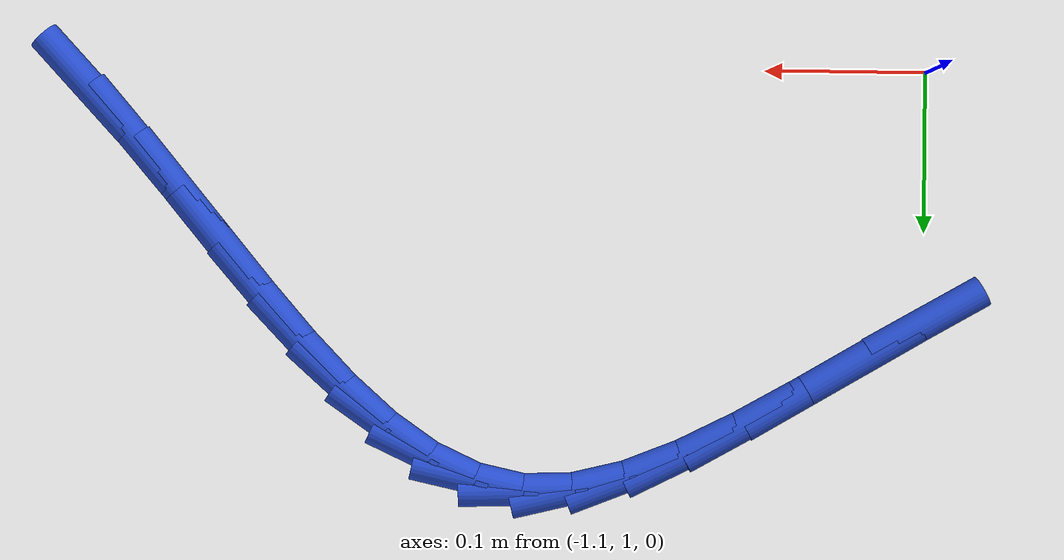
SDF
<sdf version="1.6">
 <world name="default">
  <model name="ground_plane">
   <static>1</static>
   <link name="link">
    <collision name="collision">
     <geometry><plane><normal>0 0 1</normal><size>100 100</size></plane></geometry>
     <surface><friction><ode><mu>100</mu><mu2>50</mu2></ode></friction></surface>
    </collision>
    <visual name="visual">
     <cast_shadows>0</cast_shadows>
     <geometry><plane><normal>0 0 1</normal><size>100 100</size></plane></geometry>
     <material>
      <script><uri>file://media/materials/scripts/gazebo.material</uri><name>Gazebo/WhiteGlow</name></script>
     </material>
    </visual>
   </link>
  </model>
  <model name="line">
   <link name="link_34">
    <pose>-0.5800576699563843 1.0126043816272745 0.01 0 1.57 -0.8274237586824399</pose>
    <collision name="collision">
     <geometry><cylinder><radius>0.01</radius><length>0.08</length></cylinder></geometry>
    </collision>
    <visual name="visual">
     <material>
      <script><name>Gazebo/Blue</name><uri>file://media/materials/scripts/gazebo.material</uri></script>
     </material>
     <geometry><cylinder><radius>0.01</radius><length>0.08</length></cylinder></geometry>
    </visual>
   </link>
   <link name="link_35">
    <pose>-0.6087569841782909 1.043823277804751 0.01 0 1.57 -0.8667076220452137</pose>
    <collision name="collision">
     <geometry><cylinder><radius>0.01</radius><length>0.08</length></cylinder></geometry>
    </collision>
    <visual name="visual">
     <material>
      <script><name>Gazebo/Blue</name><uri>file://media/materials/scripts/gazebo.material</uri></script>
     </material>
     <geometry><cylinder><radius>0.01</radius><length>0.08</length></cylinder></geometry>
    </visual>
   </link>
   <link name="link_36">
    <pose>-0.6362972095529965 1.076250170819877 0.01 0 1.57 -0.8854485407357142</pose>
    <collision name="collision">
     <geometry><cylinder><radius>0.01</radius><length>0.08</length></cylinder></geometry>
    </collision>
    <visual name="visual">
     <material>
      <script><name>Gazebo/Blue</name><uri>file://media/materials/scripts/gazebo.material</uri></script>
     </material>
     <geometry><cylinder><radius>0.01</radius><length>0.08</length></cylinder></geometry>
    </visual>
   </link>
   <link name="link_37">
    <pose>-0.6629891360406418 1.1088990579226592 0.01 0 1.57 -0.883813348115418</pose>
    <collision name="collision">
     <geometry><cylinder><radius>0.01</radius><length>0.08</length></cylinder></geometry>
    </collision>
    <visual name="visual">
     <material>
      <script><name>Gazebo/Blue</name><uri>file://media/materials/scripts/gazebo.material</uri></script>
     </material>
     <geometry><cylinder><radius>0.01</radius><length>0.08</length></cylinder></geometry>
    </visual>
   </link>
   <link name="link_38">
    <pose>-0.6891435536013673 1.140783936363104 0.01 0 1.57 -0.8603019290900006</pose>
    <collision name="collision">
     <geometry><cylinder><radius>0.01</radius><length>0.08</length></cylinder></geometry>
    </collision>
    <visual name="visual">
     <material>
      <script><name>Gazebo/Blue</name><uri>file://media/materials/scripts/gazebo.material</uri></script>
     </material>
     <geometry><cylinder><radius>0.01</radius><length>0.08</length></cylinder></geometry>
    </visual>
   </link>
   <link name="link_39">
    <pose>-0.7150712521953132 1.170918803391218 0.01 0 1.57 -0.8113625034754526</pose>
    <collision name="collision">
     <geometry><cylinder><radius>0.01</radius><length>0.08</length></cylinder></geometry>
    </collision>
    <visual name="visual">
     <material>
      <script><name>Gazebo/Blue</name><uri>file://media/materials/scripts/gazebo.material</uri></script>
     </material>
     <geometry><cylinder><radius>0.01</radius><length>0.08</length></cylinder></geometry>
    </visual>
   </link>
   <link name="link_40">
    <pose>-0.7410830217826205 1.1983176562570081 0.01 0 1.57 -0.730947136426376</pose>
    <collision name="collision">
     <geometry><cylinder><radius>0.01</radius><length>0.08</length></cylinder></geometry>
    </collision>
    <visual name="visual">
     <material>
      <script><name>Gazebo/Blue</name><uri>file://media/materials/scripts/gazebo.material</uri></script>
     </material>
     <geometry><cylinder><radius>0.01</radius><length>0.08</length></cylinder></geometry>
    </visual>
   </link>
   <link name="link_41">
    <pose>-0.7674896523234294 1.2219944922104806 0.01 0 1.57 -0.6104838099672966</pose>
    <collision name="collision">
     <geometry><cylinder><radius>0.01</radius><length>0.08</length></cylinder></geometry>
    </collision>
    <visual name="visual">
     <material>
      <script><name>Gazebo/Blue</name><uri>file://media/materials/scripts/gazebo.material</uri></script>
     </material>
     <geometry><cylinder><radius>0.01</radius><length>0.08</length></cylinder></geometry>
    </visual>
   </link>
   <link name="link_42">
    <pose>-0.7946019337778807 1.2409633085016427 0.01 0 1.57 -0.4409406864053051</pose>
    <collision name="collision">
     <geometry><cylinder><radius>0.01</radius><length>0.08</length></cylinder></geometry>
    </collision>
    <visual name="visual">
     <material>
      <script><name>Gazebo/Blue</name><uri>file://media/materials/scripts/gazebo.material</uri></script>
     </material>
     <geometry><cylinder><radius>0.01</radius><length>0.08</length></cylinder></geometry>
    </visual>
   </link>
   <link name="link_43">
    <pose>-0.822730656106115 1.2542381023805003 0.01 0 1.57 -0.22025364822686827</pose>
    <collision name="collision">
     <geometry><cylinder><radius>0.01</radius><length>0.08</length></cylinder></geometry>
    </collision>
    <visual name="visual">
     <material>
      <script><name>Gazebo/Blue</name><uri>file://media/materials/scripts/gazebo.material</uri></script>
     </material>
     <geometry><cylinder><radius>0.01</radius><length>0.08</length></cylinder></geometry>
    </visual>
   </link>
   <link name="link_44">
    <pose>-0.8521866092682724 1.2608328710970604 0.01 0 1.57 0.029113691015340858</pose>
    <collision name="collision">
     <geometry><cylinder><radius>0.01</radius><length>0.08</length></cylinder></geometry>
    </collision>
    <visual name="visual">
     <material>
      <script><name>Gazebo/Blue</name><uri>file://media/materials/scripts/gazebo.material</uri></script>
     </material>
     <geometry><cylinder><radius>0.01</radius><length>0.08</length></cylinder></geometry>
    </visual>
   </link>
   <link name="link_45">
    <pose>-0.8832509540408516 1.2599282177504756 0.01 0 1.57 0.23449654743403953</pose>
    <collision name="collision">
     <geometry><cylinder><radius>0.01</radius><length>0.08</length></cylinder></geometry>
    </collision>
    <visual name="visual">
     <material>
      <script><name>Gazebo/Blue</name><uri>file://media/materials/scripts/gazebo.material</uri></script>
     </material>
     <geometry><cylinder><radius>0.01</radius><length>0.08</length></cylinder></geometry>
    </visual>
   </link>
   <link name="link_46">
    <pose>-0.9159539164724706 1.2521157594564798 0.01 0 1.57 0.3734422384207128</pose>
    <collision name="collision">
     <geometry><cylinder><radius>0.01</radius><length>0.08</length></cylinder></geometry>
    </collision>
    <visual name="visual">
     <material>
      <script><name>Gazebo/Blue</name><uri>file://media/materials/scripts/gazebo.material</uri></script>
     </material>
     <geometry><cylinder><radius>0.01</radius><length>0.08</length></cylinder></geometry>
    </visual>
   </link>
   <link name="link_47">
    <pose>-0.9501994053949284 1.2386973990890677 0.01 0 1.57 0.4607626281065297</pose>
    <collision name="collision">
     <geometry><cylinder><radius>0.01</radius><length>0.08</length></cylinder></geometry>
    </collision>
    <visual name="visual">
     <material>
      <script><name>Gazebo/Blue</name><uri>file://media/materials/scripts/gazebo.material</uri></script>
     </material>
     <geometry><cylinder><radius>0.01</radius><length>0.08</length></cylinder></geometry>
    </visual>
   </link>
   <link name="link_48">
    <pose>-0.9858903688633059 1.2209804420005115 0.01 0 1.57 0.5097932044655282</pose>
    <collision name="collision">
     <geometry><cylinder><radius>0.01</radius><length>0.08</length></cylinder></geometry>
    </collision>
    <visual name="visual">
     <material>
      <script><name>Gazebo/Blue</name><uri>file://media/materials/scripts/gazebo.material</uri></script>
     </material>
     <geometry><cylinder><radius>0.01</radius><length>0.08</length></cylinder></geometry>
    </visual>
   </link>
   <link name="link_49">
    <pose>-1.0229297549326837 1.2002721935430825 0.01 0 1.57 0.5293302936370584</pose>
    <collision name="collision">
     <geometry><cylinder><radius>0.01</radius><length>0.08</length></cylinder></geometry>
    </collision>
    <visual name="visual">
     <material>
      <script><name>Gazebo/Blue</name><uri>file://media/materials/scripts/gazebo.material</uri></script>
     </material>
     <geometry><cylinder><radius>0.01</radius><length>0.08</length></cylinder></geometry>
    </visual>
   </link>
   <link name="link_50">
    <pose>-1.0612163946157378 1.1778738297555482 0.01 0 1.57 0.5291321675905174</pose>
    <collision name="collision">
     <geometry><cylinder><radius>0.01</radius><length>0.08</length></cylinder></geometry>
    </collision>
    <visual name="visual">
     <material>
      <script><name>Gazebo/Blue</name><uri>file://media/materials/scripts/gazebo.material</uri></script>
     </material>
     <geometry><cylinder><radius>0.01</radius><length>0.08</length></cylinder></geometry>
    </visual>
   </link>
   <link name="link_51">
    <pose>-1.1005183965138143 1.1548919115713616 0.01 0 1.57 0.5167140897157266</pose>
    <collision name="collision">
     <geometry><cylinder><radius>0.01</radius><length>0.08</length></cylinder></geometry>
    </collision>
    <visual name="visual">
     <material>
      <script><name>Gazebo/Blue</name><uri>file://media/materials/scripts/gazebo.material</uri></script>
     </material>
     <geometry><cylinder><radius>0.01</radius><length>0.08</length></cylinder></geometry>
    </visual>
   </link>
  </model>
 </world>
</sdf>
